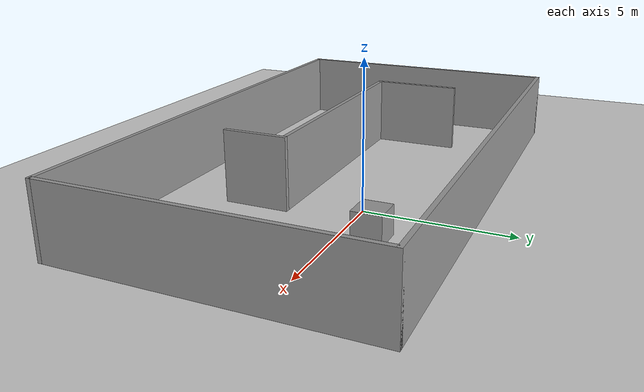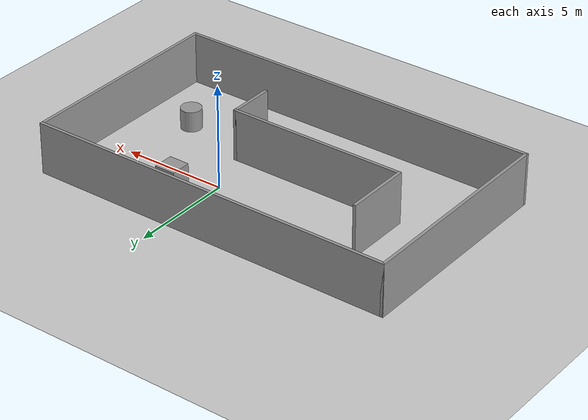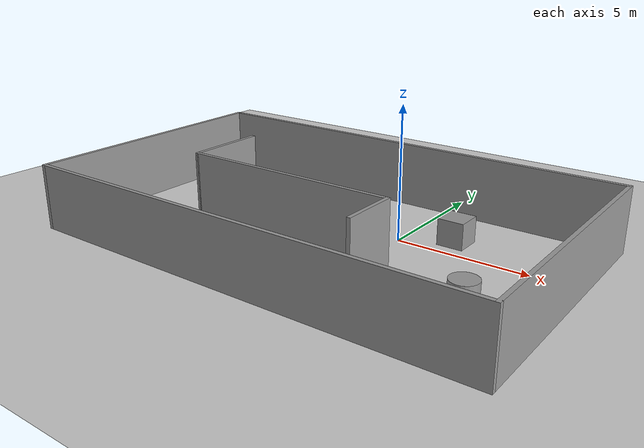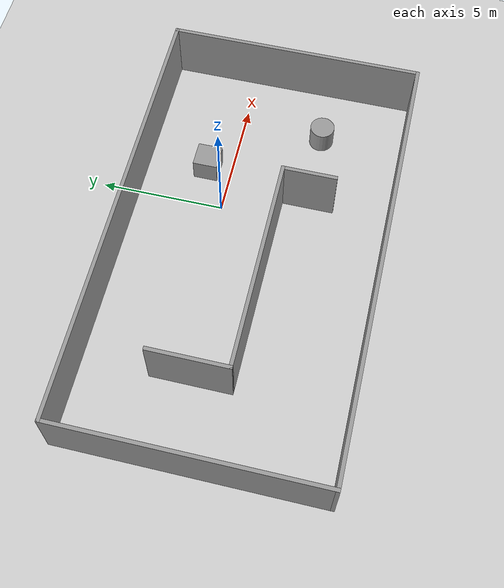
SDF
<sdf version="1.6">
 <world name="default">
  <light name="sun" type="directional">
   <pose>0 0 10 0 -0 0</pose>
   <diffuse>0.8 0.8 0.8 1</diffuse>
   <specular>0.2 0.2 0.2 1</specular>
   <attenuation>
    <range>1000</range>
    <constant>0.9</constant>
    <linear>0.01</linear>
    <quadratic>0.001</quadratic>
   </attenuation>
   <direction>-0.5 0.1 -0.9</direction>
  </light>
  <model name="ground_plane">
   <static>1</static>
   <link name="link">
    <collision name="collision">
     <geometry><plane><normal>0 0 1</normal><size>100 100</size></plane></geometry>
     <surface>
      <contact><collide_bitmask>65535</collide_bitmask></contact>
      <friction><ode><mu>100</mu><mu2>50</mu2></ode></friction>
     </surface>
    </collision>
    <visual name="visual">
     <cast_shadows>0</cast_shadows>
     <geometry><plane><normal>0 0 1</normal><size>100 100</size></plane></geometry>
     <material>
      <script><uri>file://media/materials/scripts/gazebo.material</uri><name>Gazebo/Grey</name></script>
     </material>
    </visual>
   </link>
  </model>
  <gravity>0 0 -9.8</gravity>
  <magnetic_field>6e-06 2.3e-05 -4.2e-05</magnetic_field>
  <atmosphere type="adiabatic"/>
  <physics name="default_physics" default="0" type="ode">
   <max_step_size>0.001</max_step_size>
   <real_time_factor>1</real_time_factor>
   <real_time_update_rate>1000</real_time_update_rate>
  </physics>
  <scene><ambient>0.4 0.4 0.4 1</ambient><background>0.7 0.7 0.7 1</background><shadows>1</shadows></scene>
  <audio><device>default</device></audio>
  <spherical_coordinates>
   <surface_model>EARTH_WGS84</surface_model>
   <latitude_deg>0</latitude_deg>
   <longitude_deg>0</longitude_deg>
   <elevation>0</elevation>
   <heading_deg>0</heading_deg>
  </spherical_coordinates>
  <model name="Untitled">
   <pose>-2.12162 -1.59873 0 0 -0 0</pose>
   <link name="Wall_1">
    <collision name="Wall_1_Collision">
     <geometry><box><size>18 0.15 2.5</size></box></geometry>
     <pose>0 0 1.25 0 -0 0</pose>
    </collision>
    <visual name="Wall_1_Visual">
     <pose>0 0 1.25 0 -0 0</pose>
     <geometry><box><size>18 0.15 2.5</size></box></geometry>
     <material>
      <script><uri>file://media/materials/scripts/gazebo.material</uri><name>Gazebo/Grey</name></script>
      <ambient>1 1 1 1</ambient>
     </material>
     <meta><layer>0</layer></meta>
    </visual>
    <pose>0 5.175 0 0 -0 0</pose>
   </link>
   <link name="Wall_2">
    <collision name="Wall_2_Collision">
     <geometry><box><size>10.5 0.15 2.5</size></box></geometry>
     <pose>0 0 1.25 0 -0 0</pose>
    </collision>
    <visual name="Wall_2_Visual">
     <pose>0 0 1.25 0 -0 0</pose>
     <geometry><box><size>10.5 0.15 2.5</size></box></geometry>
     <material>
      <script><uri>file://media/materials/scripts/gazebo.material</uri><name>Gazebo/Grey</name></script>
      <ambient>1 1 1 1</ambient>
     </material>
     <meta><layer>0</layer></meta>
    </visual>
    <pose>8.925 -0 0 0 -0 -1.5708</pose>
   </link>
   <link name="Wall_3">
    <collision name="Wall_3_Collision">
     <geometry><box><size>18 0.15 2.5</size></box></geometry>
     <pose>0 0 1.25 0 -0 0</pose>
    </collision>
    <visual name="Wall_3_Visual">
     <pose>0 0 1.25 0 -0 0</pose>
     <geometry><box><size>18 0.15 2.5</size></box></geometry>
     <material>
      <script><uri>file://media/materials/scripts/gazebo.material</uri><name>Gazebo/Grey</name></script>
      <ambient>1 1 1 1</ambient>
     </material>
     <meta><layer>0</layer></meta>
    </visual>
    <pose>0 -5.175 0 0 -0 3.14159</pose>
   </link>
   <link name="Wall_4">
    <collision name="Wall_4_Collision">
     <geometry><box><size>10.5 0.15 2.5</size></box></geometry>
     <pose>0 0 1.25 0 -0 0</pose>
    </collision>
    <visual name="Wall_4_Visual">
     <pose>0 0 1.25 0 -0 0</pose>
     <geometry><box><size>10.5 0.15 2.5</size></box></geometry>
     <material>
      <script><uri>file://media/materials/scripts/gazebo.material</uri><name>Gazebo/Grey</name></script>
      <ambient>1 1 1 1</ambient>
     </material>
     <meta><layer>0</layer></meta>
    </visual>
    <pose>-8.925 -0 0 0 -0 1.5708</pose>
   </link>
   <link name="Wall_6">
    <collision name="Wall_6_Collision">
     <geometry><box><size>3.25 0.15 2.5</size></box></geometry>
     <pose>0 0 1.25 0 -0 0</pose>
    </collision>
    <visual name="Wall_6_Visual">
     <pose>0 0 1.25 0 -0 0</pose>
     <geometry><box><size>3.25 0.15 2.5</size></box></geometry>
     <material>
      <script><uri>file://media/materials/scripts/gazebo.material</uri><name>Gazebo/Grey</name></script>
      <ambient>1 1 1 1</ambient>
     </material>
     <meta><layer>0</layer></meta>
    </visual>
    <pose>-5.565 0.825 0 0 -0 -1.5708</pose>
   </link>
   <link name="Wall_7">
    <collision name="Wall_7_Collision">
     <geometry><box><size>8.75 0.15 2.5</size></box></geometry>
     <pose>0 0 1.25 0 -0 0</pose>
    </collision>
    <visual name="Wall_7_Visual">
     <pose>0 0 1.25 0 -0 0</pose>
     <geometry><box><size>8.75 0.15 2.5</size></box></geometry>
     <material>
      <script><uri>file://media/materials/scripts/gazebo.material</uri><name>Gazebo/Grey</name></script>
      <ambient>1 1 1 1</ambient>
     </material>
     <meta><layer>0</layer></meta>
    </visual>
    <pose>-1.265 -0.725 0 0 -0 0</pose>
   </link>
   <link name="Wall_8">
    <collision name="Wall_8_Collision">
     <geometry><box><size>2.25 0.15 2.5</size></box></geometry>
     <pose>0 0 1.25 0 -0 0</pose>
    </collision>
    <visual name="Wall_8_Visual">
     <pose>0 0 1.25 0 -0 0</pose>
     <geometry><box><size>2.25 0.15 2.5</size></box></geometry>
     <material>
      <script><uri>file://media/materials/scripts/gazebo.material</uri><name>Gazebo/Grey</name></script>
      <ambient>1 1 1 1</ambient>
     </material>
     <meta><layer>0</layer></meta>
    </visual>
    <pose>3.035 -1.775 0 0 -0 -1.5708</pose>
   </link>
   <static>1</static>
  </model>
  <model name="Untitled_0">
   <link name="link_0">
    <inertial>
     <mass>1</mass>
     <inertia>
      <ixx>0.166667</ixx>
      <ixy>0</ixy>
      <ixz>0</ixz>
      <iyy>0.166667</iyy>
      <iyz>0</iyz>
      <izz>0.166667</izz>
     </inertia>
    </inertial>
    <pose>-1.24642 2.17206 0 0 -0 0</pose>
    <visual name="visual">
     <geometry><box><size>1 1 1</size></box></geometry>
     <material>
      <lighting>1</lighting>
      <script><uri>file://media/materials/scripts/gazebo.material</uri><name>Gazebo/Grey</name></script>
     </material>
    </visual>
    <collision name="collision">
     <geometry><box><size>1 1 1</size></box></geometry>
     <surface>
      <friction>
       <ode><mu>1</mu><mu2>1</mu2><fdir1>0 0 0</fdir1><slip1>0</slip1><slip2>0</slip2></ode>
       <torsional>
        <coefficient>1</coefficient>
        <patch_radius>0</patch_radius>
        <surface_radius>0</surface_radius>
        <use_patch_radius>1</use_patch_radius>
        <ode><slip>0</slip></ode>
       </torsional>
      </friction>
      <bounce><restitution_coefficient>0</restitution_coefficient><threshold>1e+06</threshold></bounce>
      <contact>
       <collide_without_contact>0</collide_without_contact>
       <collide_without_contact_bitmask>1</collide_without_contact_bitmask>
       <collide_bitmask>1</collide_bitmask>
       <ode>
        <soft_cfm>0</soft_cfm>
        <soft_erp>0.2</soft_erp>
        <kp>1e+13</kp>
        <kd>1</kd>
        <max_vel>0.01</max_vel>
        <min_depth>0</min_depth>
       </ode>
       <bullet>
        <split_impulse>1</split_impulse>
        <split_impulse_penetration_threshold>-0.01</split_impulse_penetration_threshold>
        <soft_cfm>0</soft_cfm>
        <soft_erp>0.2</soft_erp>
        <kp>1e+13</kp>
        <kd>1</kd>
       </bullet>
      </contact>
     </surface>
    </collision>
   </link>
   <link name="link_3">
    <inertial>
     <mass>1</mass>
     <inertia><ixx>0.145833</ixx><ixy>0</ixy><ixz>0</ixz><iyy>0.145833</iyy><iyz>0</iyz><izz>0.125</izz></inertia>
    </inertial>
    <pose>1.24642 -2.17206 0 0 -0 0</pose>
    <visual name="visual">
     <geometry><cylinder><radius>0.5</radius><length>1</length></cylinder></geometry>
     <material>
      <lighting>1</lighting>
      <script><uri>file://media/materials/scripts/gazebo.material</uri><name>Gazebo/Grey</name></script>
     </material>
    </visual>
    <collision name="collision">
     <geometry><cylinder><radius>0.5</radius><length>1</length></cylinder></geometry>
     <surface>
      <friction>
       <ode><mu>1</mu><mu2>1</mu2><fdir1>0 0 0</fdir1><slip1>0</slip1><slip2>0</slip2></ode>
       <torsional>
        <coefficient>1</coefficient>
        <patch_radius>0</patch_radius>
        <surface_radius>0</surface_radius>
        <use_patch_radius>1</use_patch_radius>
        <ode><slip>0</slip></ode>
       </torsional>
      </friction>
      <bounce><restitution_coefficient>0</restitution_coefficient><threshold>1e+06</threshold></bounce>
      <contact>
       <collide_without_contact>0</collide_without_contact>
       <collide_without_contact_bitmask>1</collide_without_contact_bitmask>
       <collide_bitmask>1</collide_bitmask>
       <ode>
        <soft_cfm>0</soft_cfm>
        <soft_erp>0.2</soft_erp>
        <kp>1e+13</kp>
        <kd>1</kd>
        <max_vel>0.01</max_vel>
        <min_depth>0</min_depth>
       </ode>
       <bullet>
        <split_impulse>1</split_impulse>
        <split_impulse_penetration_threshold>-0.01</split_impulse_penetration_threshold>
        <soft_cfm>0</soft_cfm>
        <soft_erp>0.2</soft_erp>
        <kp>1e+13</kp>
        <kd>1</kd>
       </bullet>
      </contact>
     </surface>
    </collision>
   </link>
   <static>0</static>
   <pose>3.02836 -1.17314 0.5 0 -0 0</pose>
  </model>
 </world>
</sdf>
